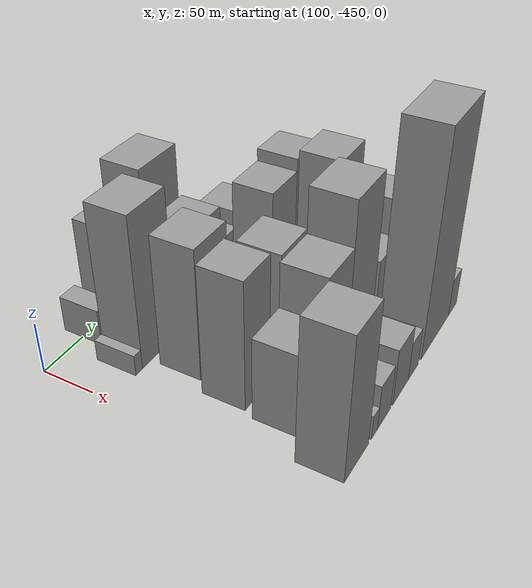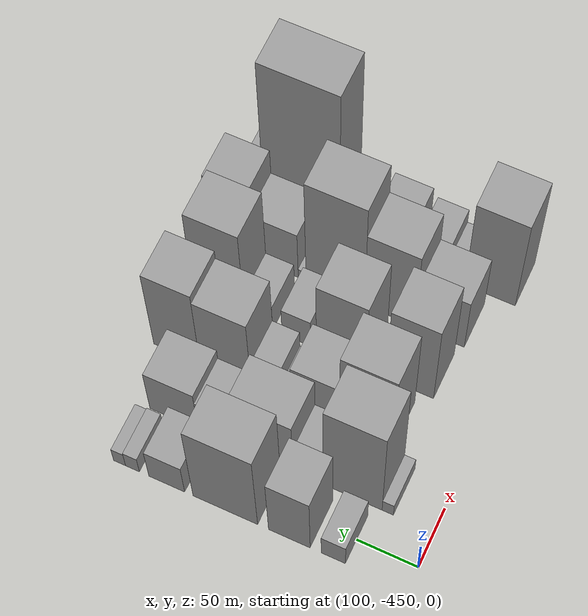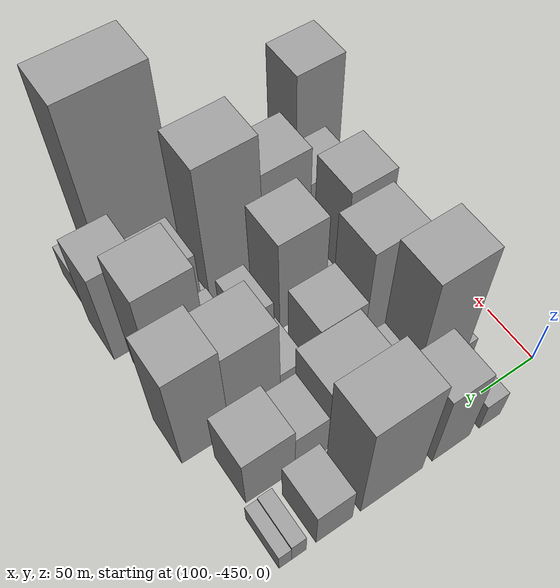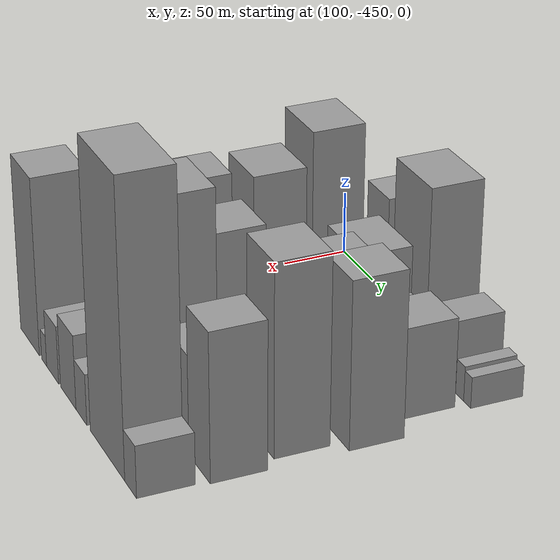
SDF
<sdf version="1.6">
 <world name="default">
  <model name="building_13">
   <static>1</static>
   <pose>100.0000 -390.1856 0 0.000000 0.000000 0.000000</pose>
   <link name="link">
    <pose>0 0 18.00 0 0 0</pose>
    <collision name="collision"><geometry><box><size>40.0000 19.7364 36.0000</size></box></geometry></collision>
    <visual name="visual">
     <cast_shadows>0</cast_shadows>
     <geometry><box><size>40.0000 19.7364 36.0000</size></box></geometry>
     <material>
      <script>
       <uri>model://grey_wall/materials/scripts</uri>
       <uri>model://grey_wall/materials/textures</uri>
       <name>vrc/grey_wall</name>
      </script>
     </material>
    </visual>
   </link>
  </model>
  <model name="building_14">
   <static>1</static>
   <pose>100.0000 -354.2431 0 0.000000 0.000000 0.000000</pose>
   <link name="link">
    <pose>0 0 49.50 0 0 0</pose>
    <collision name="collision"><geometry><box><size>40.0000 34.1485 99.0000</size></box></geometry></collision>
    <visual name="visual">
     <cast_shadows>0</cast_shadows>
     <geometry><box><size>40.0000 34.1485 99.0000</size></box></geometry>
     <material>
      <script>
       <uri>model://grey_wall/materials/scripts</uri>
       <uri>model://grey_wall/materials/textures</uri>
       <name>vrc/grey_wall</name>
      </script>
     </material>
    </visual>
   </link>
  </model>
  <model name="building_15">
   <static>1</static>
   <pose>100.0000 -301.3422 0 0.000000 0.000000 0.000000</pose>
   <link name="link">
    <pose>0 0 67.50 0 0 0</pose>
    <collision name="collision"><geometry><box><size>40.0000 53.6532 135.0000</size></box></geometry></collision>
    <visual name="visual">
     <cast_shadows>0</cast_shadows>
     <geometry><box><size>40.0000 53.6532 135.0000</size></box></geometry>
     <material>
      <script>
       <uri>model://grey_wall/materials/scripts</uri>
       <uri>model://grey_wall/materials/textures</uri>
       <name>vrc/grey_wall</name>
      </script>
     </material>
    </visual>
   </link>
  </model>
  <model name="building_16">
   <static>1</static>
   <pose>100.0000 -252.4780 0 0.000000 0.000000 0.000000</pose>
   <link name="link">
    <pose>0 0 25.50 0 0 0</pose>
    <collision name="collision"><geometry><box><size>40.0000 30.0753 51.0000</size></box></geometry></collision>
    <visual name="visual">
     <cast_shadows>0</cast_shadows>
     <geometry><box><size>40.0000 30.0753 51.0000</size></box></geometry>
     <material>
      <script>
       <uri>model://grey_wall/materials/scripts</uri>
       <uri>model://grey_wall/materials/textures</uri>
       <name>vrc/grey_wall</name>
      </script>
     </material>
    </visual>
   </link>
  </model>
  <model name="building_17">
   <static>1</static>
   <pose>100.0000 -223.5903 0 0.000000 0.000000 0.000000</pose>
   <link name="link">
    <pose>0 0 13.50 0 0 0</pose>
    <collision name="collision"><geometry><box><size>40.0000 11.7002 27.0000</size></box></geometry></collision>
    <visual name="visual">
     <cast_shadows>0</cast_shadows>
     <geometry><box><size>40.0000 11.7002 27.0000</size></box></geometry>
     <material>
      <script>
       <uri>model://grey_wall/materials/scripts</uri>
       <uri>model://grey_wall/materials/textures</uri>
       <name>vrc/grey_wall</name>
      </script>
     </material>
    </visual>
   </link>
  </model>
  <model name="building_18">
   <static>1</static>
   <pose>100.0000 -212.6931 0 0.000000 0.000000 0.000000</pose>
   <link name="link">
    <pose>0 0 12.00 0 0 0</pose>
    <collision name="collision"><geometry><box><size>40.0000 10.0943 24.0000</size></box></geometry></collision>
    <visual name="visual">
     <cast_shadows>0</cast_shadows>
     <geometry><box><size>40.0000 10.0943 24.0000</size></box></geometry>
     <material>
      <script>
       <uri>model://grey_wall/materials/scripts</uri>
       <uri>model://grey_wall/materials/textures</uri>
       <name>vrc/grey_wall</name>
      </script>
     </material>
    </visual>
   </link>
  </model>
  <model name="building_58">
   <static>1</static>
   <pose>149.0000 -412.4409 0 0.000000 0.000000 0.000000</pose>
   <link name="link">
    <pose>0 0 10.50 0 0 0</pose>
    <collision name="collision"><geometry><box><size>40.0000 9.2826 21.0000</size></box></geometry></collision>
    <visual name="visual">
     <cast_shadows>0</cast_shadows>
     <geometry><box><size>40.0000 9.2826 21.0000</size></box></geometry>
     <material>
      <script>
       <uri>model://grey_wall/materials/scripts</uri>
       <uri>model://grey_wall/materials/textures</uri>
       <name>vrc/grey_wall</name>
      </script>
     </material>
    </visual>
   </link>
  </model>
  <model name="building_59">
   <static>1</static>
   <pose>149.0000 -383.6070 0 0.000000 0.000000 0.000000</pose>
   <link name="link">
    <pose>0 0 75.00 0 0 0</pose>
    <collision name="collision"><geometry><box><size>40.0000 48.3852 150.0000</size></box></geometry></collision>
    <visual name="visual">
     <cast_shadows>0</cast_shadows>
     <geometry><box><size>40.0000 48.3852 150.0000</size></box></geometry>
     <material>
      <script>
       <uri>model://grey_wall/materials/scripts</uri>
       <uri>model://grey_wall/materials/textures</uri>
       <name>vrc/grey_wall</name>
      </script>
     </material>
    </visual>
   </link>
  </model>
  <model name="building_60">
   <static>1</static>
   <pose>149.0000 -346.8234 0 0.000000 0.000000 0.000000</pose>
   <link name="link">
    <pose>0 0 22.50 0 0 0</pose>
    <collision name="collision"><geometry><box><size>40.0000 25.1820 45.0000</size></box></geometry></collision>
    <visual name="visual">
     <cast_shadows>0</cast_shadows>
     <geometry><box><size>40.0000 25.1820 45.0000</size></box></geometry>
     <material>
      <script>
       <uri>model://grey_wall/materials/scripts</uri>
       <uri>model://grey_wall/materials/textures</uri>
       <name>vrc/grey_wall</name>
      </script>
     </material>
    </visual>
   </link>
  </model>
  <model name="building_61">
   <static>1</static>
   <pose>149.0000 -308.2573 0 0.000000 0.000000 0.000000</pose>
   <link name="link">
    <pose>0 0 45.00 0 0 0</pose>
    <collision name="collision"><geometry><box><size>40.0000 51.9501 90.0000</size></box></geometry></collision>
    <visual name="visual">
     <cast_shadows>0</cast_shadows>
     <geometry><box><size>40.0000 51.9501 90.0000</size></box></geometry>
     <material>
      <script>
       <uri>model://grey_wall/materials/scripts</uri>
       <uri>model://grey_wall/materials/textures</uri>
       <name>vrc/grey_wall</name>
      </script>
     </material>
    </visual>
   </link>
  </model>
  <model name="building_62">
   <static>1</static>
   <pose>149.0000 -268.3880 0 0.000000 0.000000 0.000000</pose>
   <link name="link">
    <pose>0 0 27.00 0 0 0</pose>
    <collision name="collision"><geometry><box><size>40.0000 27.7886 54.0000</size></box></geometry></collision>
    <visual name="visual">
     <cast_shadows>0</cast_shadows>
     <geometry><box><size>40.0000 27.7886 54.0000</size></box></geometry>
     <material>
      <script>
       <uri>model://grey_wall/materials/scripts</uri>
       <uri>model://grey_wall/materials/textures</uri>
       <name>vrc/grey_wall</name>
      </script>
     </material>
    </visual>
   </link>
  </model>
  <model name="building_63">
   <static>1</static>
   <pose>149.0000 -234.0115 0 0.000000 0.000000 0.000000</pose>
   <link name="link">
    <pose>0 0 34.50 0 0 0</pose>
    <collision name="collision"><geometry><box><size>40.0000 40.9645 69.0000</size></box></geometry></collision>
    <visual name="visual">
     <cast_shadows>0</cast_shadows>
     <geometry><box><size>40.0000 40.9645 69.0000</size></box></geometry>
     <material>
      <script>
       <uri>model://grey_wall/materials/scripts</uri>
       <uri>model://grey_wall/materials/textures</uri>
       <name>vrc/grey_wall</name>
      </script>
     </material>
    </visual>
   </link>
  </model>
  <model name="building_106">
   <static>1</static>
   <pose>198.0000 -372.7475 0 0.000000 0.000000 0.000000</pose>
   <link name="link">
    <pose>0 0 64.50 0 0 0</pose>
    <collision name="collision"><geometry><box><size>40.0000 45.1733 129.0000</size></box></geometry></collision>
    <visual name="visual">
     <cast_shadows>0</cast_shadows>
     <geometry><box><size>40.0000 45.1733 129.0000</size></box></geometry>
     <material>
      <script>
       <uri>model://grey_wall/materials/scripts</uri>
       <uri>model://grey_wall/materials/textures</uri>
       <name>vrc/grey_wall</name>
      </script>
     </material>
    </visual>
   </link>
  </model>
  <model name="building_107">
   <static>1</static>
   <pose>198.0000 -329.9323 0 0.000000 0.000000 0.000000</pose>
   <link name="link">
    <pose>0 0 34.50 0 0 0</pose>
    <collision name="collision"><geometry><box><size>40.0000 40.4570 69.0000</size></box></geometry></collision>
    <visual name="visual">
     <cast_shadows>0</cast_shadows>
     <geometry><box><size>40.0000 40.4570 69.0000</size></box></geometry>
     <material>
      <script>
       <uri>model://grey_wall/materials/scripts</uri>
       <uri>model://grey_wall/materials/textures</uri>
       <name>vrc/grey_wall</name>
      </script>
     </material>
    </visual>
   </link>
  </model>
  <model name="building_108">
   <static>1</static>
   <pose>198.0000 -301.6781 0 0.000000 0.000000 0.000000</pose>
   <link name="link">
    <pose>0 0 7.50 0 0 0</pose>
    <collision name="collision"><geometry><box><size>40.0000 6.0512 15.0000</size></box></geometry></collision>
    <visual name="visual">
     <cast_shadows>0</cast_shadows>
     <geometry><box><size>40.0000 6.0512 15.0000</size></box></geometry>
     <material>
      <script>
       <uri>model://grey_wall/materials/scripts</uri>
       <uri>model://grey_wall/materials/textures</uri>
       <name>vrc/grey_wall</name>
      </script>
     </material>
    </visual>
   </link>
  </model>
  <model name="building_109">
   <static>1</static>
   <pose>198.0000 -287.1992 0 0.000000 0.000000 0.000000</pose>
   <link name="link">
    <pose>0 0 21.00 0 0 0</pose>
    <collision name="collision"><geometry><box><size>40.0000 22.9067 42.0000</size></box></geometry></collision>
    <visual name="visual">
     <cast_shadows>0</cast_shadows>
     <geometry><box><size>40.0000 22.9067 42.0000</size></box></geometry>
     <material>
      <script>
       <uri>model://grey_wall/materials/scripts</uri>
       <uri>model://grey_wall/materials/textures</uri>
       <name>vrc/grey_wall</name>
      </script>
     </material>
    </visual>
   </link>
  </model>
  <model name="building_110">
   <static>1</static>
   <pose>198.0000 -253.8869 0 0.000000 0.000000 0.000000</pose>
   <link name="link">
    <pose>0 0 57.00 0 0 0</pose>
    <collision name="collision"><geometry><box><size>40.0000 43.7178 114.0000</size></box></geometry></collision>
    <visual name="visual">
     <cast_shadows>0</cast_shadows>
     <geometry><box><size>40.0000 43.7178 114.0000</size></box></geometry>
     <material>
      <script>
       <uri>model://grey_wall/materials/scripts</uri>
       <uri>model://grey_wall/materials/textures</uri>
       <name>vrc/grey_wall</name>
      </script>
     </material>
    </visual>
   </link>
  </model>
  <model name="building_111">
   <static>1</static>
   <pose>198.0000 -212.0561 0 0.000000 0.000000 0.000000</pose>
   <link name="link">
    <pose>0 0 63.00 0 0 0</pose>
    <collision name="collision"><geometry><box><size>40.0000 39.9439 126.0000</size></box></geometry></collision>
    <visual name="visual">
     <cast_shadows>0</cast_shadows>
     <geometry><box><size>40.0000 39.9439 126.0000</size></box></geometry>
     <material>
      <script>
       <uri>model://grey_wall/materials/scripts</uri>
       <uri>model://grey_wall/materials/textures</uri>
       <name>vrc/grey_wall</name>
      </script>
     </material>
    </visual>
   </link>
  </model>
  <model name="building_163">
   <static>1</static>
   <pose>247.0000 -387.4445 0 0.000000 0.000000 0.000000</pose>
   <link name="link">
    <pose>0 0 63.00 0 0 0</pose>
    <collision name="collision"><geometry><box><size>40.0000 39.2365 126.0000</size></box></geometry></collision>
    <visual name="visual">
     <cast_shadows>0</cast_shadows>
     <geometry><box><size>40.0000 39.2365 126.0000</size></box></geometry>
     <material>
      <script>
       <uri>model://grey_wall/materials/scripts</uri>
       <uri>model://grey_wall/materials/textures</uri>
       <name>vrc/grey_wall</name>
      </script>
     </material>
    </visual>
   </link>
  </model>
  <model name="building_164">
   <static>1</static>
   <pose>247.0000 -363.2681 0 0.000000 0.000000 0.000000</pose>
   <link name="link">
    <pose>0 0 10.50 0 0 0</pose>
    <collision name="collision"><geometry><box><size>40.0000 9.1164 21.0000</size></box></geometry></collision>
    <visual name="visual">
     <cast_shadows>0</cast_shadows>
     <geometry><box><size>40.0000 9.1164 21.0000</size></box></geometry>
     <material>
      <script>
       <uri>model://grey_wall/materials/scripts</uri>
       <uri>model://grey_wall/materials/textures</uri>
       <name>vrc/grey_wall</name>
      </script>
     </material>
    </visual>
   </link>
  </model>
  <model name="building_165">
   <static>1</static>
   <pose>247.0000 -329.4950 0 0.000000 0.000000 0.000000</pose>
   <link name="link">
    <pose>0 0 57.00 0 0 0</pose>
    <collision name="collision"><geometry><box><size>40.0000 42.4298 114.0000</size></box></geometry></collision>
    <visual name="visual">
     <cast_shadows>0</cast_shadows>
     <geometry><box><size>40.0000 42.4298 114.0000</size></box></geometry>
     <material>
      <script>
       <uri>model://grey_wall/materials/scripts</uri>
       <uri>model://grey_wall/materials/textures</uri>
       <name>vrc/grey_wall</name>
      </script>
     </material>
    </visual>
   </link>
  </model>
  <model name="building_166">
   <static>1</static>
   <pose>247.0000 -291.0494 0 0.000000 0.000000 0.000000</pose>
   <link name="link">
    <pose>0 0 22.50 0 0 0</pose>
    <collision name="collision"><geometry><box><size>40.0000 24.4615 45.0000</size></box></geometry></collision>
    <visual name="visual">
     <cast_shadows>0</cast_shadows>
     <geometry><box><size>40.0000 24.4615 45.0000</size></box></geometry>
     <material>
      <script>
       <uri>model://grey_wall/materials/scripts</uri>
       <uri>model://grey_wall/materials/textures</uri>
       <name>vrc/grey_wall</name>
      </script>
     </material>
    </visual>
   </link>
  </model>
  <model name="building_167">
   <static>1</static>
   <pose>247.0000 -258.8559 0 0.000000 0.000000 0.000000</pose>
   <link name="link">
    <pose>0 0 21.00 0 0 0</pose>
    <collision name="collision"><geometry><box><size>40.0000 23.9255 42.0000</size></box></geometry></collision>
    <visual name="visual">
     <cast_shadows>0</cast_shadows>
     <geometry><box><size>40.0000 23.9255 42.0000</size></box></geometry>
     <material>
      <script>
       <uri>model://grey_wall/materials/scripts</uri>
       <uri>model://grey_wall/materials/textures</uri>
       <name>vrc/grey_wall</name>
      </script>
     </material>
    </visual>
   </link>
  </model>
  <model name="building_168">
   <static>1</static>
   <pose>247.0000 -224.7908 0 0.000000 0.000000 0.000000</pose>
   <link name="link">
    <pose>0 0 72.00 0 0 0</pose>
    <collision name="collision"><geometry><box><size>40.0000 44.2046 144.0000</size></box></geometry></collision>
    <visual name="visual">
     <cast_shadows>0</cast_shadows>
     <geometry><box><size>40.0000 44.2046 144.0000</size></box></geometry>
     <material>
      <script>
       <uri>model://grey_wall/materials/scripts</uri>
       <uri>model://grey_wall/materials/textures</uri>
       <name>vrc/grey_wall</name>
      </script>
     </material>
    </visual>
   </link>
  </model>
  <model name="building_213">
   <static>1</static>
   <pose>296.0000 -390.9832 0 0.000000 0.000000 0.000000</pose>
   <link name="link">
    <pose>0 0 40.50 0 0 0</pose>
    <collision name="collision"><geometry><box><size>40.0000 41.4245 81.0000</size></box></geometry></collision>
    <visual name="visual">
     <cast_shadows>0</cast_shadows>
     <geometry><box><size>40.0000 41.4245 81.0000</size></box></geometry>
     <material>
      <script>
       <uri>model://grey_wall/materials/scripts</uri>
       <uri>model://grey_wall/materials/textures</uri>
       <name>vrc/grey_wall</name>
      </script>
     </material>
    </visual>
   </link>
  </model>
  <model name="building_214">
   <static>1</static>
   <pose>296.0000 -348.6577 0 0.000000 0.000000 0.000000</pose>
   <link name="link">
    <pose>0 0 61.50 0 0 0</pose>
    <collision name="collision"><geometry><box><size>40.0000 43.2265 123.0000</size></box></geometry></collision>
    <visual name="visual">
     <cast_shadows>0</cast_shadows>
     <geometry><box><size>40.0000 43.2265 123.0000</size></box></geometry>
     <material>
      <script>
       <uri>model://grey_wall/materials/scripts</uri>
       <uri>model://grey_wall/materials/textures</uri>
       <name>vrc/grey_wall</name>
      </script>
     </material>
    </visual>
   </link>
  </model>
  <model name="building_215">
   <static>1</static>
   <pose>296.0000 -301.8094 0 0.000000 0.000000 0.000000</pose>
   <link name="link">
    <pose>0 0 82.50 0 0 0</pose>
    <collision name="collision"><geometry><box><size>40.0000 50.4700 165.0000</size></box></geometry></collision>
    <visual name="visual">
     <cast_shadows>0</cast_shadows>
     <geometry><box><size>40.0000 50.4700 165.0000</size></box></geometry>
     <material>
      <script>
       <uri>model://grey_wall/materials/scripts</uri>
       <uri>model://grey_wall/materials/textures</uri>
       <name>vrc/grey_wall</name>
      </script>
     </material>
    </visual>
   </link>
  </model>
  <model name="building_216">
   <static>1</static>
   <pose>296.0000 -273.1562 0 0.000000 0.000000 0.000000</pose>
   <link name="link">
    <pose>0 0 7.50 0 0 0</pose>
    <collision name="collision"><geometry><box><size>40.0000 6.8364 15.0000</size></box></geometry></collision>
    <visual name="visual">
     <cast_shadows>0</cast_shadows>
     <geometry><box><size>40.0000 6.8364 15.0000</size></box></geometry>
     <material>
      <script>
       <uri>model://grey_wall/materials/scripts</uri>
       <uri>model://grey_wall/materials/textures</uri>
       <name>vrc/grey_wall</name>
      </script>
     </material>
    </visual>
   </link>
  </model>
  <model name="building_217">
   <static>1</static>
   <pose>296.0000 -249.3790 0 0.000000 0.000000 0.000000</pose>
   <link name="link">
    <pose>0 0 37.50 0 0 0</pose>
    <collision name="collision"><geometry><box><size>40.0000 40.7180 75.0000</size></box></geometry></collision>
    <visual name="visual">
     <cast_shadows>0</cast_shadows>
     <geometry><box><size>40.0000 40.7180 75.0000</size></box></geometry>
     <material>
      <script>
       <uri>model://grey_wall/materials/scripts</uri>
       <uri>model://grey_wall/materials/textures</uri>
       <name>vrc/grey_wall</name>
      </script>
     </material>
    </visual>
   </link>
  </model>
  <model name="building_218">
   <static>1</static>
   <pose>296.0000 -210.5413 0 0.000000 0.000000 0.000000</pose>
   <link name="link">
    <pose>0 0 55.50 0 0 0</pose>
    <collision name="collision"><geometry><box><size>40.0000 36.9575 111.0000</size></box></geometry></collision>
    <visual name="visual">
     <cast_shadows>0</cast_shadows>
     <geometry><box><size>40.0000 36.9575 111.0000</size></box></geometry>
     <material>
      <script>
       <uri>model://grey_wall/materials/scripts</uri>
       <uri>model://grey_wall/materials/textures</uri>
       <name>vrc/grey_wall</name>
      </script>
     </material>
    </visual>
   </link>
  </model>
  <model name="building_263">
   <static>1</static>
   <pose>345.0000 -412.6310 0 0.000000 0.000000 0.000000</pose>
   <link name="link">
    <pose>0 0 69.00 0 0 0</pose>
    <collision name="collision"><geometry><box><size>40.0000 42.9412 138.0000</size></box></geometry></collision>
    <visual name="visual">
     <cast_shadows>0</cast_shadows>
     <geometry><box><size>40.0000 42.9412 138.0000</size></box></geometry>
     <material>
      <script>
       <uri>model://grey_wall/materials/scripts</uri>
       <uri>model://grey_wall/materials/textures</uri>
       <name>vrc/grey_wall</name>
      </script>
     </material>
    </visual>
   </link>
  </model>
  <model name="building_264">
   <static>1</static>
   <pose>345.0000 -380.5479 0 0.000000 0.000000 0.000000</pose>
   <link name="link">
    <pose>0 0 12.00 0 0 0</pose>
    <collision name="collision"><geometry><box><size>40.0000 11.2250 24.0000</size></box></geometry></collision>
    <visual name="visual">
     <cast_shadows>0</cast_shadows>
     <geometry><box><size>40.0000 11.2250 24.0000</size></box></geometry>
     <material>
      <script>
       <uri>model://grey_wall/materials/scripts</uri>
       <uri>model://grey_wall/materials/textures</uri>
       <name>vrc/grey_wall</name>
      </script>
     </material>
    </visual>
   </link>
  </model>
  <model name="building_265">
   <static>1</static>
   <pose>345.0000 -361.7700 0 0.000000 0.000000 0.000000</pose>
   <link name="link">
    <pose>0 0 22.50 0 0 0</pose>
    <collision name="collision"><geometry><box><size>40.0000 26.3307 45.0000</size></box></geometry></collision>
    <visual name="visual">
     <cast_shadows>0</cast_shadows>
     <geometry><box><size>40.0000 26.3307 45.0000</size></box></geometry>
     <material>
      <script>
       <uri>model://grey_wall/materials/scripts</uri>
       <uri>model://grey_wall/materials/textures</uri>
       <name>vrc/grey_wall</name>
      </script>
     </material>
    </visual>
   </link>
  </model>
  <model name="building_266">
   <static>1</static>
   <pose>345.0000 -328.3522 0 0.000000 0.000000 0.000000</pose>
   <link name="link">
    <pose>0 0 28.50 0 0 0</pose>
    <collision name="collision"><geometry><box><size>40.0000 32.5049 57.0000</size></box></geometry></collision>
    <visual name="visual">
     <cast_shadows>0</cast_shadows>
     <geometry><box><size>40.0000 32.5049 57.0000</size></box></geometry>
     <material>
      <script>
       <uri>model://grey_wall/materials/scripts</uri>
       <uri>model://grey_wall/materials/textures</uri>
       <name>vrc/grey_wall</name>
      </script>
     </material>
    </visual>
   </link>
  </model>
  <model name="building_267">
   <static>1</static>
   <pose>345.0000 -301.0558 0 0.000000 0.000000 0.000000</pose>
   <link name="link">
    <pose>0 0 19.50 0 0 0</pose>
    <collision name="collision"><geometry><box><size>40.0000 22.0880 39.0000</size></box></geometry></collision>
    <visual name="visual">
     <cast_shadows>0</cast_shadows>
     <geometry><box><size>40.0000 22.0880 39.0000</size></box></geometry>
     <material>
      <script>
       <uri>model://grey_wall/materials/scripts</uri>
       <uri>model://grey_wall/materials/textures</uri>
       <name>vrc/grey_wall</name>
      </script>
     </material>
    </visual>
   </link>
  </model>
  <model name="building_268">
   <static>1</static>
   <pose>345.0000 -249.8076 0 0.000000 0.000000 0.000000</pose>
   <link name="link">
    <pose>0 0 108.00 0 0 0</pose>
    <collision name="collision"><geometry><box><size>40.0000 66.4084 216.0000</size></box></geometry></collision>
    <visual name="visual">
     <cast_shadows>0</cast_shadows>
     <geometry><box><size>40.0000 66.4084 216.0000</size></box></geometry>
     <material>
      <script>
       <uri>model://grey_wall/materials/scripts</uri>
       <uri>model://grey_wall/materials/textures</uri>
       <name>vrc/grey_wall</name>
      </script>
     </material>
    </visual>
   </link>
  </model>
  <model name="building_269">
   <static>1</static>
   <pose>345.0000 -205.8301 0 0.000000 0.000000 0.000000</pose>
   <link name="link">
    <pose>0 0 19.50 0 0 0</pose>
    <collision name="collision"><geometry><box><size>40.0000 21.5465 39.0000</size></box></geometry></collision>
    <visual name="visual">
     <cast_shadows>0</cast_shadows>
     <geometry><box><size>40.0000 21.5465 39.0000</size></box></geometry>
     <material>
      <script>
       <uri>model://grey_wall/materials/scripts</uri>
       <uri>model://grey_wall/materials/textures</uri>
       <name>vrc/grey_wall</name>
      </script>
     </material>
    </visual>
   </link>
  </model>
 </world>
</sdf>
